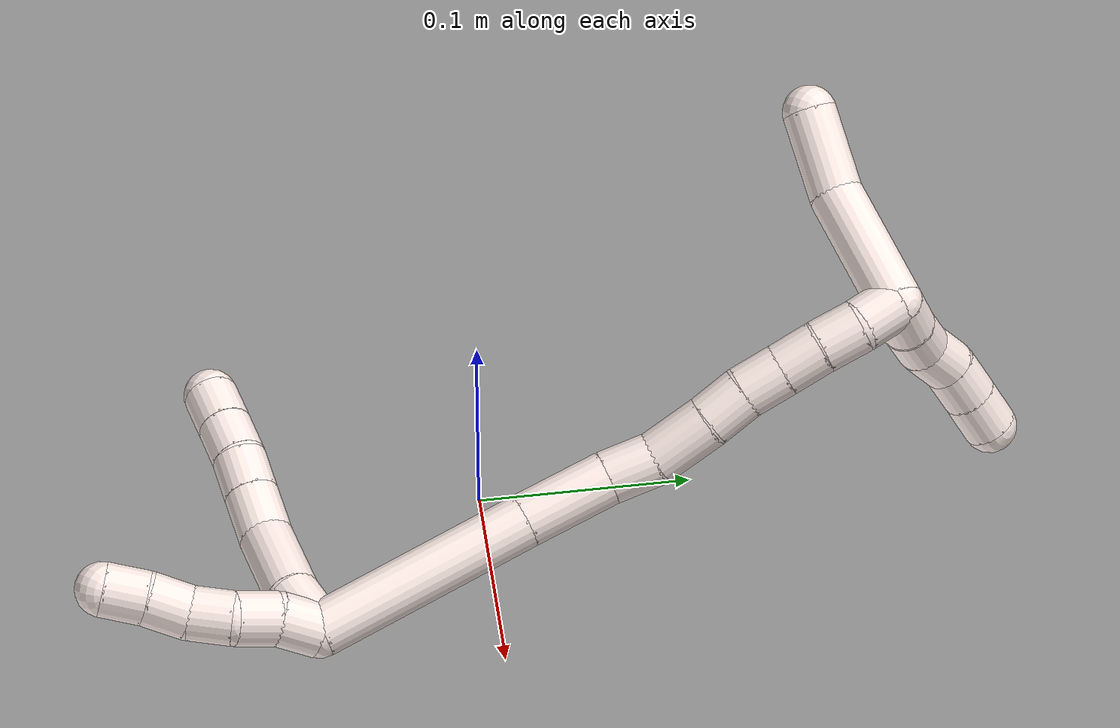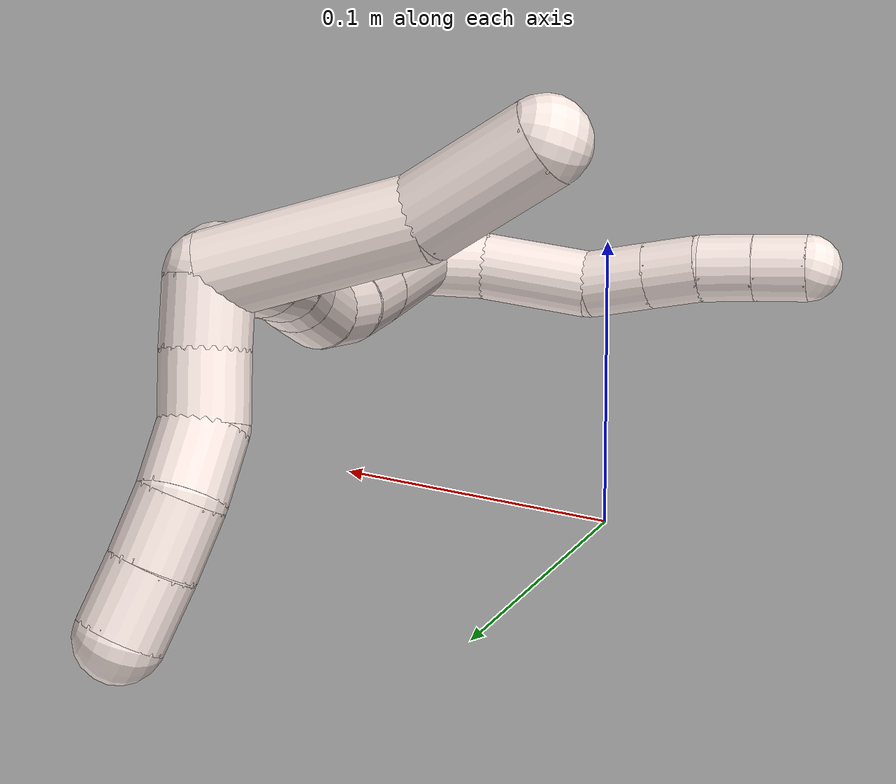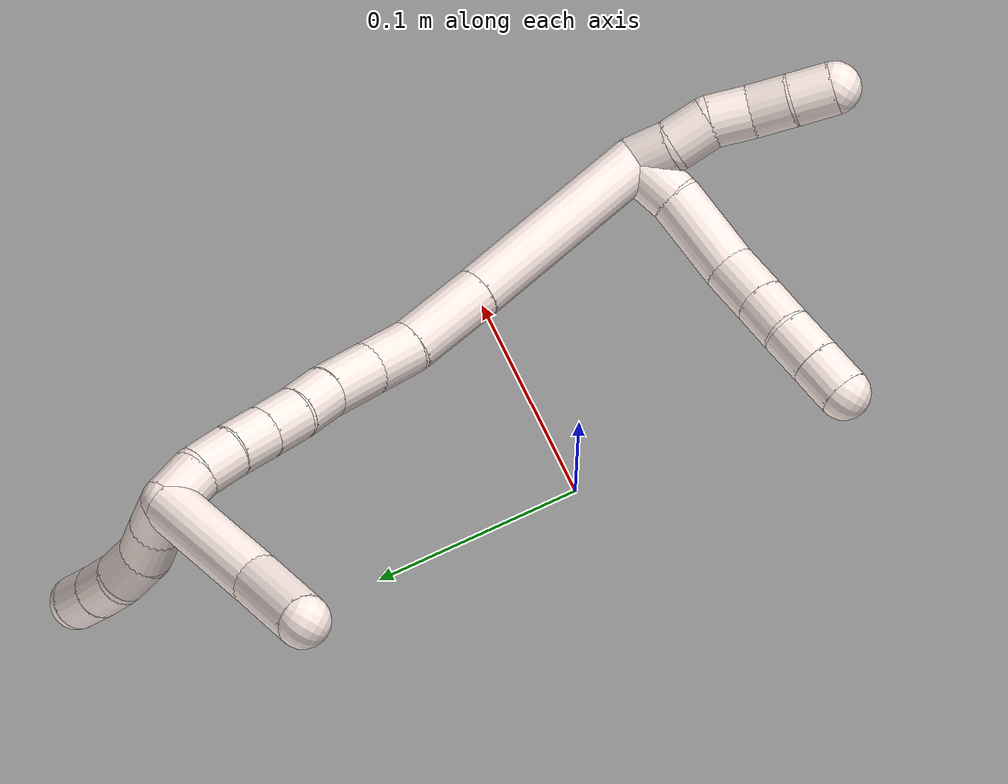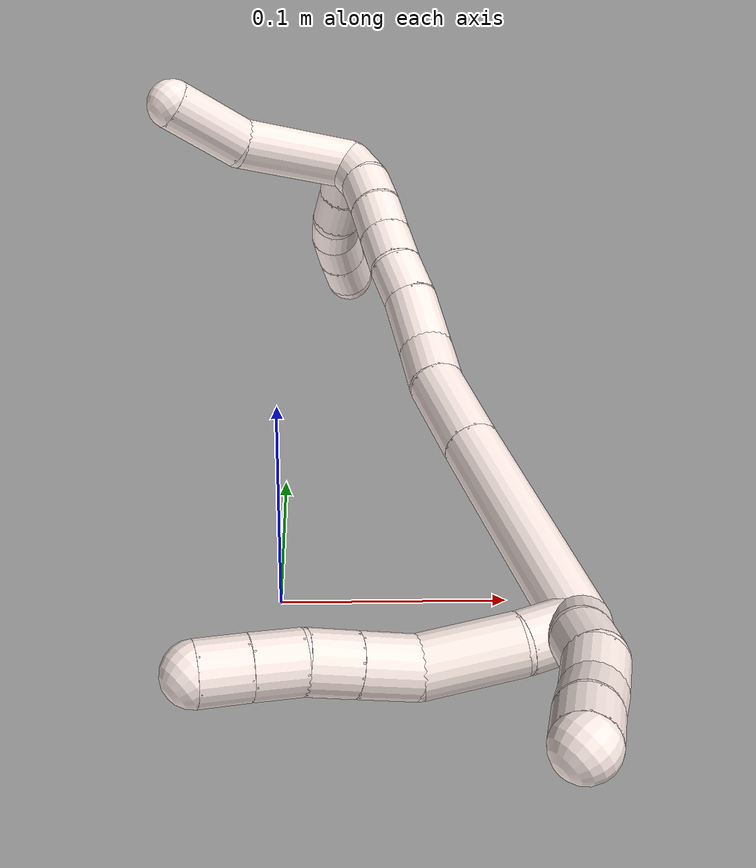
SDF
<sdf version="1.7">
 <world name="default">
  <model name="11">
   <static>0</static>
   <link name="11">
    <collision name="collision-cylinder-e_1_2_8">
     <pose>-0.005514 -0.000365 -0.011491 3.10986 -0.447193 -3.00228</pose>
     <geometry><cylinder><radius>0.0125</radius><length>0.025502</length></cylinder></geometry>
     <surface>
      <friction><ode><mu>1.16</mu><mu2>1.16</mu2><slip1>0</slip1><slip2>0</slip2></ode></friction>
      <contact><ode><kp>1e+06</kp><kd>1</kd><max_vel>0</max_vel><min_depth>0.001</min_depth></ode></contact>
     </surface>
    </collision>
    <visual name="visual-cylinder-e_1_2_8">
     <pose>-0.005514 -0.000365 -0.011491 3.10986 -0.447193 -3.00228</pose>
     <geometry><cylinder><radius>0.0125</radius><length>0.025502</length></cylinder></geometry>
     <material><ambient>1 0.933333 0.909804 1</ambient></material>
    </visual>
    <collision name="collision-cylinder-e_2_8_9">
     <pose>-0.020931 0.002196 -0.040444 -2.97563 -0.509977 2.52384</pose>
     <geometry><cylinder><radius>0.0125</radius><length>0.040573</length></cylinder></geometry>
     <surface>
      <friction><ode><mu>1.16</mu><mu2>1.16</mu2><slip1>0</slip1><slip2>0</slip2></ode></friction>
      <contact><ode><kp>1e+06</kp><kd>1</kd><max_vel>0</max_vel><min_depth>0.001</min_depth></ode></contact>
     </surface>
    </collision>
    <visual name="visual-cylinder-e_2_8_9">
     <pose>-0.020931 0.002196 -0.040444 -2.97563 -0.509977 2.52384</pose>
     <geometry><cylinder><radius>0.0125</radius><length>0.040573</length></cylinder></geometry>
     <material><ambient>1 0.933333 0.909804 1</ambient></material>
    </visual>
    <collision name="collision-cylinder-e_3_9_10">
     <pose>-0.039146 0.00436 -0.066385 3.05207 -0.773481 -2.92252</pose>
     <geometry><cylinder><radius>0.0125</radius><length>0.023795</length></cylinder></geometry>
     <surface>
      <friction><ode><mu>1.16</mu><mu2>1.16</mu2><slip1>0</slip1><slip2>0</slip2></ode></friction>
      <contact><ode><kp>1e+06</kp><kd>1</kd><max_vel>0</max_vel><min_depth>0.001</min_depth></ode></contact>
     </surface>
    </collision>
    <visual name="visual-cylinder-e_3_9_10">
     <pose>-0.039146 0.00436 -0.066385 3.05207 -0.773481 -2.92252</pose>
     <geometry><cylinder><radius>0.0125</radius><length>0.023795</length></cylinder></geometry>
     <material><ambient>1 0.933333 0.909804 1</ambient></material>
    </visual>
    <collision name="collision-cylinder-e_4_10_11">
     <pose>-0.054489 0.003064 -0.081975 3.06658 -0.778328 -2.95909</pose>
     <geometry><cylinder><radius>0.0125</radius><length>0.02003</length></cylinder></geometry>
     <surface>
      <friction><ode><mu>1.16</mu><mu2>1.16</mu2><slip1>0</slip1><slip2>0</slip2></ode></friction>
      <contact><ode><kp>1e+06</kp><kd>1</kd><max_vel>0</max_vel><min_depth>0.001</min_depth></ode></contact>
     </surface>
    </collision>
    <visual name="visual-cylinder-e_4_10_11">
     <pose>-0.054489 0.003064 -0.081975 3.06658 -0.778328 -2.95909</pose>
     <geometry><cylinder><radius>0.0125</radius><length>0.02003</length></cylinder></geometry>
     <material><ambient>1 0.933333 0.909804 1</ambient></material>
    </visual>
    <collision name="collision-cylinder-e_5_11_12">
     <pose>-0.067471 0.002549 -0.097178 -3.13916 -0.634081 3.13419</pose>
     <geometry><cylinder><radius>0.0125</radius><length>0.020088</length></cylinder></geometry>
     <surface>
      <friction><ode><mu>1.16</mu><mu2>1.16</mu2><slip1>0</slip1><slip2>0</slip2></ode></friction>
      <contact><ode><kp>1e+06</kp><kd>1</kd><max_vel>0</max_vel><min_depth>0.001</min_depth></ode></contact>
     </surface>
    </collision>
    <visual name="visual-cylinder-e_5_11_12">
     <pose>-0.067471 0.002549 -0.097178 -3.13916 -0.634081 3.13419</pose>
     <geometry><cylinder><radius>0.0125</radius><length>0.020088</length></cylinder></geometry>
     <material><ambient>1 0.933333 0.909804 1</ambient></material>
    </visual>
    <collision name="collision-cylinder-e_6_12_6">
     <pose>-0.079223 0.002688 -0.113421 -3.12696 -0.618454 3.09579</pose>
     <geometry><cylinder><radius>0.0125</radius><length>0.020012</length></cylinder></geometry>
     <surface>
      <friction><ode><mu>1.16</mu><mu2>1.16</mu2><slip1>0</slip1><slip2>0</slip2></ode></friction>
      <contact><ode><kp>1e+06</kp><kd>1</kd><max_vel>0</max_vel><min_depth>0.001</min_depth></ode></contact>
     </surface>
    </collision>
    <visual name="visual-cylinder-e_6_12_6">
     <pose>-0.079223 0.002688 -0.113421 -3.12696 -0.618454 3.09579</pose>
     <geometry><cylinder><radius>0.0125</radius><length>0.020012</length></cylinder></geometry>
     <material><ambient>1 0.933333 0.909804 1</ambient></material>
    </visual>
    <collision name="collision-cylinder-e_1_2_13">
     <pose>-8e-06 -0.008864 -0.00463 2.05214 -0.000779 -0.001286</pose>
     <geometry><cylinder><radius>0.0125</radius><length>0.02</length></cylinder></geometry>
     <surface>
      <friction><ode><mu>1.16</mu><mu2>1.16</mu2><slip1>0</slip1><slip2>0</slip2></ode></friction>
      <contact><ode><kp>1e+06</kp><kd>1</kd><max_vel>0</max_vel><min_depth>0.001</min_depth></ode></contact>
     </surface>
    </collision>
    <visual name="visual-cylinder-e_1_2_13">
     <pose>-8e-06 -0.008864 -0.00463 2.05214 -0.000779 -0.001286</pose>
     <geometry><cylinder><radius>0.0125</radius><length>0.02</length></cylinder></geometry>
     <material><ambient>1 0.933333 0.909804 1</ambient></material>
    </visual>
    <collision name="collision-cylinder-e_2_13_14">
     <pose>0.002586 -0.026494 -0.013306 2.00321 0.263149 0.40792</pose>
     <geometry><cylinder><radius>0.0125</radius><length>0.02</length></cylinder></geometry>
     <surface>
      <friction><ode><mu>1.16</mu><mu2>1.16</mu2><slip1>0</slip1><slip2>0</slip2></ode></friction>
      <contact><ode><kp>1e+06</kp><kd>1</kd><max_vel>0</max_vel><min_depth>0.001</min_depth></ode></contact>
     </surface>
    </collision>
    <visual name="visual-cylinder-e_2_13_14">
     <pose>0.002586 -0.026494 -0.013306 2.00321 0.263149 0.40792</pose>
     <geometry><cylinder><radius>0.0125</radius><length>0.02</length></cylinder></geometry>
     <material><ambient>1 0.933333 0.909804 1</ambient></material>
    </visual>
    <collision name="collision-cylinder-e_3_14_15">
     <pose>0.006862 -0.042384 -0.024169 2.33424 0.168306 0.389949</pose>
     <geometry><cylinder><radius>0.0125</radius><length>0.02</length></cylinder></geometry>
     <surface>
      <friction><ode><mu>1.16</mu><mu2>1.16</mu2><slip1>0</slip1><slip2>0</slip2></ode></friction>
      <contact><ode><kp>1e+06</kp><kd>1</kd><max_vel>0</max_vel><min_depth>0.001</min_depth></ode></contact>
     </surface>
    </collision>
    <visual name="visual-cylinder-e_3_14_15">
     <pose>0.006862 -0.042384 -0.024169 2.33424 0.168306 0.389949</pose>
     <geometry><cylinder><radius>0.0125</radius><length>0.02</length></cylinder></geometry>
     <material><ambient>1 0.933333 0.909804 1</ambient></material>
    </visual>
    <collision name="collision-cylinder-e_4_15_16">
     <pose>0.008098 -0.057641 -0.036785 2.19025 -0.043882 -0.08515</pose>
     <geometry><cylinder><radius>0.0125</radius><length>0.02</length></cylinder></geometry>
     <surface>
      <friction><ode><mu>1.16</mu><mu2>1.16</mu2><slip1>0</slip1><slip2>0</slip2></ode></friction>
      <contact><ode><kp>1e+06</kp><kd>1</kd><max_vel>0</max_vel><min_depth>0.001</min_depth></ode></contact>
     </surface>
    </collision>
    <visual name="visual-cylinder-e_4_15_16">
     <pose>0.008098 -0.057641 -0.036785 2.19025 -0.043882 -0.08515</pose>
     <geometry><cylinder><radius>0.0125</radius><length>0.02</length></cylinder></geometry>
     <material><ambient>1 0.933333 0.909804 1</ambient></material>
    </visual>
    <collision name="collision-cylinder-e_5_16_5">
     <pose>0.00851 -0.073556 -0.048808 2.24533 0.085153 0.17677</pose>
     <geometry><cylinder><radius>0.0125</radius><length>0.02</length></cylinder></geometry>
     <surface>
      <friction><ode><mu>1.16</mu><mu2>1.16</mu2><slip1>0</slip1><slip2>0</slip2></ode></friction>
      <contact><ode><kp>1e+06</kp><kd>1</kd><max_vel>0</max_vel><min_depth>0.001</min_depth></ode></contact>
     </surface>
    </collision>
    <visual name="visual-cylinder-e_5_16_5">
     <pose>0.00851 -0.073556 -0.048808 2.24533 0.085153 0.17677</pose>
     <geometry><cylinder><radius>0.0125</radius><length>0.02</length></cylinder></geometry>
     <material><ambient>1 0.933333 0.909804 1</ambient></material>
    </visual>
    <collision name="collision-cylinder-e_1_2_17">
     <pose>-0.036297 0.031792 0.019875 -1.01208 -0.769191 0.441297</pose>
     <geometry><cylinder><radius>0.0125</radius><length>0.104368</length></cylinder></geometry>
     <surface>
      <friction><ode><mu>1.16</mu><mu2>1.16</mu2><slip1>0</slip1><slip2>0</slip2></ode></friction>
      <contact><ode><kp>1e+06</kp><kd>1</kd><max_vel>0</max_vel><min_depth>0.001</min_depth></ode></contact>
     </surface>
    </collision>
    <visual name="visual-cylinder-e_1_2_17">
     <pose>-0.036297 0.031792 0.019875 -1.01208 -0.769191 0.441297</pose>
     <geometry><cylinder><radius>0.0125</radius><length>0.104368</length></cylinder></geometry>
     <material><ambient>1 0.933333 0.909804 1</ambient></material>
    </visual>
    <collision name="collision-cylinder-e_2_17_18">
     <pose>-0.087172 0.076501 0.048178 -0.992728 -0.757191 0.424387</pose>
     <geometry><cylinder><radius>0.0125</radius><length>0.042447</length></cylinder></geometry>
     <surface>
      <friction><ode><mu>1.16</mu><mu2>1.16</mu2><slip1>0</slip1><slip2>0</slip2></ode></friction>
      <contact><ode><kp>1e+06</kp><kd>1</kd><max_vel>0</max_vel><min_depth>0.001</min_depth></ode></contact>
     </surface>
    </collision>
    <visual name="visual-cylinder-e_2_17_18">
     <pose>-0.087172 0.076501 0.048178 -0.992728 -0.757191 0.424387</pose>
     <geometry><cylinder><radius>0.0125</radius><length>0.042447</length></cylinder></geometry>
     <material><ambient>1 0.933333 0.909804 1</ambient></material>
    </visual>
    <collision name="collision-cylinder-e_3_18_19">
     <pose>-0.109063 0.096015 0.062914 -0.807636 -0.675552 0.297944</pose>
     <geometry><cylinder><radius>0.0125</radius><length>0.023389</length></cylinder></geometry>
     <surface>
      <friction><ode><mu>1.16</mu><mu2>1.16</mu2><slip1>0</slip1><slip2>0</slip2></ode></friction>
      <contact><ode><kp>1e+06</kp><kd>1</kd><max_vel>0</max_vel><min_depth>0.001</min_depth></ode></contact>
     </surface>
    </collision>
    <visual name="visual-cylinder-e_3_18_19">
     <pose>-0.109063 0.096015 0.062914 -0.807636 -0.675552 0.297944</pose>
     <geometry><cylinder><radius>0.0125</radius><length>0.023389</length></cylinder></geometry>
     <material><ambient>1 0.933333 0.909804 1</ambient></material>
    </visual>
    <collision name="collision-cylinder-e_4_19_20">
     <pose>-0.127809 0.107698 0.076805 -0.591048 -0.89687 0.290878</pose>
     <geometry><cylinder><radius>0.0125</radius><length>0.029266</length></cylinder></geometry>
     <surface>
      <friction><ode><mu>1.16</mu><mu2>1.16</mu2><slip1>0</slip1><slip2>0</slip2></ode></friction>
      <contact><ode><kp>1e+06</kp><kd>1</kd><max_vel>0</max_vel><min_depth>0.001</min_depth></ode></contact>
     </surface>
    </collision>
    <visual name="visual-cylinder-e_4_19_20">
     <pose>-0.127809 0.107698 0.076805 -0.591048 -0.89687 0.290878</pose>
     <geometry><cylinder><radius>0.0125</radius><length>0.029266</length></cylinder></geometry>
     <material><ambient>1 0.933333 0.909804 1</ambient></material>
    </visual>
    <collision name="collision-cylinder-e_5_20_21">
     <pose>-0.147678 0.116564 0.088844 -0.703155 -0.965047 0.379667</pose>
     <geometry><cylinder><radius>0.0125</radius><length>0.020522</length></cylinder></geometry>
     <surface>
      <friction><ode><mu>1.16</mu><mu2>1.16</mu2><slip1>0</slip1><slip2>0</slip2></ode></friction>
      <contact><ode><kp>1e+06</kp><kd>1</kd><max_vel>0</max_vel><min_depth>0.001</min_depth></ode></contact>
     </surface>
    </collision>
    <visual name="visual-cylinder-e_5_20_21">
     <pose>-0.147678 0.116564 0.088844 -0.703155 -0.965047 0.379667</pose>
     <geometry><cylinder><radius>0.0125</radius><length>0.020522</length></cylinder></geometry>
     <material><ambient>1 0.933333 0.909804 1</ambient></material>
    </visual>
    <collision name="collision-cylinder-e_6_21_22">
     <pose>-0.163454 0.124872 0.09836 -0.730237 -0.824242 0.331152</pose>
     <geometry><cylinder><radius>0.0125</radius><length>0.020001</length></cylinder></geometry>
     <surface>
      <friction><ode><mu>1.16</mu><mu2>1.16</mu2><slip1>0</slip1><slip2>0</slip2></ode></friction>
      <contact><ode><kp>1e+06</kp><kd>1</kd><max_vel>0</max_vel><min_depth>0.001</min_depth></ode></contact>
     </surface>
    </collision>
    <visual name="visual-cylinder-e_6_21_22">
     <pose>-0.163454 0.124872 0.09836 -0.730237 -0.824242 0.331152</pose>
     <geometry><cylinder><radius>0.0125</radius><length>0.020001</length></cylinder></geometry>
     <material><ambient>1 0.933333 0.909804 1</ambient></material>
    </visual>
    <collision name="collision-cylinder-e_7_22_23">
     <pose>-0.178197 0.133751 0.108555 -0.702582 -0.833012 0.321466</pose>
     <geometry><cylinder><radius>0.0125</radius><length>0.020007</length></cylinder></geometry>
     <surface>
      <friction><ode><mu>1.16</mu><mu2>1.16</mu2><slip1>0</slip1><slip2>0</slip2></ode></friction>
      <contact><ode><kp>1e+06</kp><kd>1</kd><max_vel>0</max_vel><min_depth>0.001</min_depth></ode></contact>
     </surface>
    </collision>
    <visual name="visual-cylinder-e_7_22_23">
     <pose>-0.178197 0.133751 0.108555 -0.702582 -0.833012 0.321466</pose>
     <geometry><cylinder><radius>0.0125</radius><length>0.020007</length></cylinder></geometry>
     <material><ambient>1 0.933333 0.909804 1</ambient></material>
    </visual>
    <collision name="collision-cylinder-e_8_23_24">
     <pose>-0.192677 0.14329 0.118483 -0.825328 -0.786299 0.359235</pose>
     <geometry><cylinder><radius>0.0125</radius><length>0.02</length></cylinder></geometry>
     <surface>
      <friction><ode><mu>1.16</mu><mu2>1.16</mu2><slip1>0</slip1><slip2>0</slip2></ode></friction>
      <contact><ode><kp>1e+06</kp><kd>1</kd><max_vel>0</max_vel><min_depth>0.001</min_depth></ode></contact>
     </surface>
    </collision>
    <visual name="visual-cylinder-e_8_23_24">
     <pose>-0.192677 0.14329 0.118483 -0.825328 -0.786299 0.359235</pose>
     <geometry><cylinder><radius>0.0125</radius><length>0.02</length></cylinder></geometry>
     <material><ambient>1 0.933333 0.909804 1</ambient></material>
    </visual>
    <collision name="collision-cylinder-e_9_24_1">
     <pose>-0.207095 0.154672 0.126066 -1.14719 -0.824208 0.550488</pose>
     <geometry><cylinder><radius>0.0125</radius><length>0.02</length></cylinder></geometry>
     <surface>
      <friction><ode><mu>1.16</mu><mu2>1.16</mu2><slip1>0</slip1><slip2>0</slip2></ode></friction>
      <contact><ode><kp>1e+06</kp><kd>1</kd><max_vel>0</max_vel><min_depth>0.001</min_depth></ode></contact>
     </surface>
    </collision>
    <visual name="visual-cylinder-e_9_24_1">
     <pose>-0.207095 0.154672 0.126066 -1.14719 -0.824208 0.550488</pose>
     <geometry><cylinder><radius>0.0125</radius><length>0.02</length></cylinder></geometry>
     <material><ambient>1 0.933333 0.909804 1</ambient></material>
    </visual>
    <collision name="collision-cylinder-e_1_1_25">
     <pose>-0.210412 0.169707 0.126491 -1.83228 0.413994 -0.534119</pose>
     <geometry><cylinder><radius>0.0125</radius><length>0.02</length></cylinder></geometry>
     <surface>
      <friction><ode><mu>1.16</mu><mu2>1.16</mu2><slip1>0</slip1><slip2>0</slip2></ode></friction>
      <contact><ode><kp>1e+06</kp><kd>1</kd><max_vel>0</max_vel><min_depth>0.001</min_depth></ode></contact>
     </surface>
    </collision>
    <visual name="visual-cylinder-e_1_1_25">
     <pose>-0.210412 0.169707 0.126491 -1.83228 0.413994 -0.534119</pose>
     <geometry><cylinder><radius>0.0125</radius><length>0.02</length></cylinder></geometry>
     <material><ambient>1 0.933333 0.909804 1</ambient></material>
    </visual>
    <collision name="collision-cylinder-e_2_25_26">
     <pose>-0.203287 0.187718 0.121605 -1.83906 0.315479 -0.411466</pose>
     <geometry><cylinder><radius>0.0125</radius><length>0.02</length></cylinder></geometry>
     <surface>
      <friction><ode><mu>1.16</mu><mu2>1.16</mu2><slip1>0</slip1><slip2>0</slip2></ode></friction>
      <contact><ode><kp>1e+06</kp><kd>1</kd><max_vel>0</max_vel><min_depth>0.001</min_depth></ode></contact>
     </surface>
    </collision>
    <visual name="visual-cylinder-e_2_25_26">
     <pose>-0.203287 0.187718 0.121605 -1.83906 0.315479 -0.411466</pose>
     <geometry><cylinder><radius>0.0125</radius><length>0.02</length></cylinder></geometry>
     <material><ambient>1 0.933333 0.909804 1</ambient></material>
    </visual>
    <collision name="collision-cylinder-e_3_26_27">
     <pose>-0.197826 0.206586 0.119639 -1.51373 0.238054 -0.224957</pose>
     <geometry><cylinder><radius>0.0125</radius><length>0.02</length></cylinder></geometry>
     <surface>
      <friction><ode><mu>1.16</mu><mu2>1.16</mu2><slip1>0</slip1><slip2>0</slip2></ode></friction>
      <contact><ode><kp>1e+06</kp><kd>1</kd><max_vel>0</max_vel><min_depth>0.001</min_depth></ode></contact>
     </surface>
    </collision>
    <visual name="visual-cylinder-e_3_26_27">
     <pose>-0.197826 0.206586 0.119639 -1.51373 0.238054 -0.224957</pose>
     <geometry><cylinder><radius>0.0125</radius><length>0.02</length></cylinder></geometry>
     <material><ambient>1 0.933333 0.909804 1</ambient></material>
    </visual>
    <collision name="collision-cylinder-e_4_27_28">
     <pose>-0.190502 0.224924 0.121065 -1.47023 0.51965 -0.471772</pose>
     <geometry><cylinder><radius>0.0125</radius><length>0.02</length></cylinder></geometry>
     <surface>
      <friction><ode><mu>1.16</mu><mu2>1.16</mu2><slip1>0</slip1><slip2>0</slip2></ode></friction>
      <contact><ode><kp>1e+06</kp><kd>1</kd><max_vel>0</max_vel><min_depth>0.001</min_depth></ode></contact>
     </surface>
    </collision>
    <visual name="visual-cylinder-e_4_27_28">
     <pose>-0.190502 0.224924 0.121065 -1.47023 0.51965 -0.471772</pose>
     <geometry><cylinder><radius>0.0125</radius><length>0.02</length></cylinder></geometry>
     <material><ambient>1 0.933333 0.909804 1</ambient></material>
    </visual>
    <collision name="collision-cylinder-e_5_28_4">
     <pose>-0.180311 0.242001 0.123141 -1.42905 0.549782 -0.479857</pose>
     <geometry><cylinder><radius>0.0125</radius><length>0.02</length></cylinder></geometry>
     <surface>
      <friction><ode><mu>1.16</mu><mu2>1.16</mu2><slip1>0</slip1><slip2>0</slip2></ode></friction>
      <contact><ode><kp>1e+06</kp><kd>1</kd><max_vel>0</max_vel><min_depth>0.001</min_depth></ode></contact>
     </surface>
    </collision>
    <visual name="visual-cylinder-e_5_28_4">
     <pose>-0.180311 0.242001 0.123141 -1.42905 0.549782 -0.479857</pose>
     <geometry><cylinder><radius>0.0125</radius><length>0.02</length></cylinder></geometry>
     <material><ambient>1 0.933333 0.909804 1</ambient></material>
    </visual>
    <collision name="collision-cylinder-e_1_1_29">
     <pose>-0.234459 0.15467 0.10741 2.86049 -0.731151 -2.43351</pose>
     <geometry><cylinder><radius>0.0125</radius><length>0.059979</length></cylinder></geometry>
     <surface>
      <friction><ode><mu>1.16</mu><mu2>1.16</mu2><slip1>0</slip1><slip2>0</slip2></ode></friction>
      <contact><ode><kp>1e+06</kp><kd>1</kd><max_vel>0</max_vel><min_depth>0.001</min_depth></ode></contact>
     </surface>
    </collision>
    <visual name="visual-cylinder-e_1_1_29">
     <pose>-0.234459 0.15467 0.10741 2.86049 -0.731151 -2.43351</pose>
     <geometry><cylinder><radius>0.0125</radius><length>0.059979</length></cylinder></geometry>
     <material><ambient>1 0.933333 0.909804 1</ambient></material>
    </visual>
    <collision name="collision-cylinder-e_2_29_3">
     <pose>-0.270934 0.142124 0.076503 2.55014 -0.964968 -2.08793</pose>
     <geometry><cylinder><radius>0.0125</radius><length>0.040021</length></cylinder></geometry>
     <surface>
      <friction><ode><mu>1.16</mu><mu2>1.16</mu2><slip1>0</slip1><slip2>0</slip2></ode></friction>
      <contact><ode><kp>1e+06</kp><kd>1</kd><max_vel>0</max_vel><min_depth>0.001</min_depth></ode></contact>
     </surface>
    </collision>
    <visual name="visual-cylinder-e_2_29_3">
     <pose>-0.270934 0.142124 0.076503 2.55014 -0.964968 -2.08793</pose>
     <geometry><cylinder><radius>0.0125</radius><length>0.040021</length></cylinder></geometry>
     <material><ambient>1 0.933333 0.909804 1</ambient></material>
    </visual>
    <collision name="collision-sphere-3">
     <pose>-0.287383 0.13577 0.067043 0 -0 0</pose>
     <geometry><sphere><radius>0.0125</radius></sphere></geometry>
     <surface>
      <friction><ode><mu>1.16</mu><mu2>1.16</mu2><slip1>0</slip1><slip2>0</slip2></ode></friction>
      <contact><ode><kp>1e+06</kp><kd>1</kd><max_vel>0</max_vel><min_depth>0.001</min_depth></ode></contact>
     </surface>
    </collision>
    <visual name="visual-sphere-3">
     <pose>-0.287383 0.13577 0.067043 0 -0 0</pose>
     <geometry><sphere><radius>0.0125</radius></sphere></geometry>
     <material><ambient>1 0.933333 0.909804 1</ambient></material>
    </visual>
    <collision name="collision-sphere-29">
     <pose>-0.254484 0.148477 0.085962 0 -0 0</pose>
     <geometry><sphere><radius>0.0125</radius></sphere></geometry>
     <surface>
      <friction><ode><mu>1.16</mu><mu2>1.16</mu2><slip1>0</slip1><slip2>0</slip2></ode></friction>
      <contact><ode><kp>1e+06</kp><kd>1</kd><max_vel>0</max_vel><min_depth>0.001</min_depth></ode></contact>
     </surface>
    </collision>
    <visual name="visual-sphere-29">
     <pose>-0.254484 0.148477 0.085962 0 -0 0</pose>
     <geometry><sphere><radius>0.0125</radius></sphere></geometry>
     <material><ambient>1 0.933333 0.909804 1</ambient></material>
    </visual>
    <collision name="collision-sphere-4">
     <pose>-0.175086 0.250442 0.124345 0 -0 0</pose>
     <geometry><sphere><radius>0.0125</radius></sphere></geometry>
     <surface>
      <friction><ode><mu>1.16</mu><mu2>1.16</mu2><slip1>0</slip1><slip2>0</slip2></ode></friction>
      <contact><ode><kp>1e+06</kp><kd>1</kd><max_vel>0</max_vel><min_depth>0.001</min_depth></ode></contact>
     </surface>
    </collision>
    <visual name="visual-sphere-4">
     <pose>-0.175086 0.250442 0.124345 0 -0 0</pose>
     <geometry><sphere><radius>0.0125</radius></sphere></geometry>
     <material><ambient>1 0.933333 0.909804 1</ambient></material>
    </visual>
    <collision name="collision-sphere-28">
     <pose>-0.185536 0.233561 0.121936 0 -0 0</pose>
     <geometry><sphere><radius>0.0125</radius></sphere></geometry>
     <surface>
      <friction><ode><mu>1.16</mu><mu2>1.16</mu2><slip1>0</slip1><slip2>0</slip2></ode></friction>
      <contact><ode><kp>1e+06</kp><kd>1</kd><max_vel>0</max_vel><min_depth>0.001</min_depth></ode></contact>
     </surface>
    </collision>
    <visual name="visual-sphere-28">
     <pose>-0.185536 0.233561 0.121936 0 -0 0</pose>
     <geometry><sphere><radius>0.0125</radius></sphere></geometry>
     <material><ambient>1 0.933333 0.909804 1</ambient></material>
    </visual>
    <collision name="collision-sphere-27">
     <pose>-0.195468 0.216288 0.120193 0 -0 0</pose>
     <geometry><sphere><radius>0.0125</radius></sphere></geometry>
     <surface>
      <friction><ode><mu>1.16</mu><mu2>1.16</mu2><slip1>0</slip1><slip2>0</slip2></ode></friction>
      <contact><ode><kp>1e+06</kp><kd>1</kd><max_vel>0</max_vel><min_depth>0.001</min_depth></ode></contact>
     </surface>
    </collision>
    <visual name="visual-sphere-27">
     <pose>-0.195468 0.216288 0.120193 0 -0 0</pose>
     <geometry><sphere><radius>0.0125</radius></sphere></geometry>
     <material><ambient>1 0.933333 0.909804 1</ambient></material>
    </visual>
    <collision name="collision-sphere-26">
     <pose>-0.200184 0.196884 0.119085 0 -0 0</pose>
     <geometry><sphere><radius>0.0125</radius></sphere></geometry>
     <surface>
      <friction><ode><mu>1.16</mu><mu2>1.16</mu2><slip1>0</slip1><slip2>0</slip2></ode></friction>
      <contact><ode><kp>1e+06</kp><kd>1</kd><max_vel>0</max_vel><min_depth>0.001</min_depth></ode></contact>
     </surface>
    </collision>
    <visual name="visual-sphere-26">
     <pose>-0.200184 0.196884 0.119085 0 -0 0</pose>
     <geometry><sphere><radius>0.0125</radius></sphere></geometry>
     <material><ambient>1 0.933333 0.909804 1</ambient></material>
    </visual>
    <collision name="collision-sphere-25">
     <pose>-0.206389 0.178551 0.124124 0 -0 0</pose>
     <geometry><sphere><radius>0.0125</radius></sphere></geometry>
     <surface>
      <friction><ode><mu>1.16</mu><mu2>1.16</mu2><slip1>0</slip1><slip2>0</slip2></ode></friction>
      <contact><ode><kp>1e+06</kp><kd>1</kd><max_vel>0</max_vel><min_depth>0.001</min_depth></ode></contact>
     </surface>
    </collision>
    <visual name="visual-sphere-25">
     <pose>-0.206389 0.178551 0.124124 0 -0 0</pose>
     <geometry><sphere><radius>0.0125</radius></sphere></geometry>
     <material><ambient>1 0.933333 0.909804 1</ambient></material>
    </visual>
    <collision name="collision-sphere-1">
     <pose>-0.214435 0.160863 0.128858 0 -0 0</pose>
     <geometry><sphere><radius>0.0125</radius></sphere></geometry>
     <surface>
      <friction><ode><mu>1.16</mu><mu2>1.16</mu2><slip1>0</slip1><slip2>0</slip2></ode></friction>
      <contact><ode><kp>1e+06</kp><kd>1</kd><max_vel>0</max_vel><min_depth>0.001</min_depth></ode></contact>
     </surface>
    </collision>
    <visual name="visual-sphere-1">
     <pose>-0.214435 0.160863 0.128858 0 -0 0</pose>
     <geometry><sphere><radius>0.0125</radius></sphere></geometry>
     <material><ambient>1 0.933333 0.909804 1</ambient></material>
    </visual>
    <collision name="collision-sphere-24">
     <pose>-0.199754 0.148481 0.123275 0 -0 0</pose>
     <geometry><sphere><radius>0.0125</radius></sphere></geometry>
     <surface>
      <friction><ode><mu>1.16</mu><mu2>1.16</mu2><slip1>0</slip1><slip2>0</slip2></ode></friction>
      <contact><ode><kp>1e+06</kp><kd>1</kd><max_vel>0</max_vel><min_depth>0.001</min_depth></ode></contact>
     </surface>
    </collision>
    <visual name="visual-sphere-24">
     <pose>-0.199754 0.148481 0.123275 0 -0 0</pose>
     <geometry><sphere><radius>0.0125</radius></sphere></geometry>
     <material><ambient>1 0.933333 0.909804 1</ambient></material>
    </visual>
    <collision name="collision-sphere-23">
     <pose>-0.1856 0.138099 0.113691 0 -0 0</pose>
     <geometry><sphere><radius>0.0125</radius></sphere></geometry>
     <surface>
      <friction><ode><mu>1.16</mu><mu2>1.16</mu2><slip1>0</slip1><slip2>0</slip2></ode></friction>
      <contact><ode><kp>1e+06</kp><kd>1</kd><max_vel>0</max_vel><min_depth>0.001</min_depth></ode></contact>
     </surface>
    </collision>
    <visual name="visual-sphere-23">
     <pose>-0.1856 0.138099 0.113691 0 -0 0</pose>
     <geometry><sphere><radius>0.0125</radius></sphere></geometry>
     <material><ambient>1 0.933333 0.909804 1</ambient></material>
    </visual>
    <collision name="collision-sphere-22">
     <pose>-0.170795 0.129403 0.10342 0 -0 0</pose>
     <geometry><sphere><radius>0.0125</radius></sphere></geometry>
     <surface>
      <friction><ode><mu>1.16</mu><mu2>1.16</mu2><slip1>0</slip1><slip2>0</slip2></ode></friction>
      <contact><ode><kp>1e+06</kp><kd>1</kd><max_vel>0</max_vel><min_depth>0.001</min_depth></ode></contact>
     </surface>
    </collision>
    <visual name="visual-sphere-22">
     <pose>-0.170795 0.129403 0.10342 0 -0 0</pose>
     <geometry><sphere><radius>0.0125</radius></sphere></geometry>
     <material><ambient>1 0.933333 0.909804 1</ambient></material>
    </visual>
    <collision name="collision-sphere-21">
     <pose>-0.156114 0.120342 0.0933 0 -0 0</pose>
     <geometry><sphere><radius>0.0125</radius></sphere></geometry>
     <surface>
      <friction><ode><mu>1.16</mu><mu2>1.16</mu2><slip1>0</slip1><slip2>0</slip2></ode></friction>
      <contact><ode><kp>1e+06</kp><kd>1</kd><max_vel>0</max_vel><min_depth>0.001</min_depth></ode></contact>
     </surface>
    </collision>
    <visual name="visual-sphere-21">
     <pose>-0.156114 0.120342 0.0933 0 -0 0</pose>
     <geometry><sphere><radius>0.0125</radius></sphere></geometry>
     <material><ambient>1 0.933333 0.909804 1</ambient></material>
    </visual>
    <collision name="collision-sphere-12">
     <pose>-0.073422 0.002569 -0.10527 0 -0 0</pose>
     <geometry><sphere><radius>0.0125</radius></sphere></geometry>
     <surface>
      <friction><ode><mu>1.16</mu><mu2>1.16</mu2><slip1>0</slip1><slip2>0</slip2></ode></friction>
      <contact><ode><kp>1e+06</kp><kd>1</kd><max_vel>0</max_vel><min_depth>0.001</min_depth></ode></contact>
     </surface>
    </collision>
    <visual name="visual-sphere-12">
     <pose>-0.073422 0.002569 -0.10527 0 -0 0</pose>
     <geometry><sphere><radius>0.0125</radius></sphere></geometry>
     <material><ambient>1 0.933333 0.909804 1</ambient></material>
    </visual>
    <collision name="collision-sphere-11">
     <pose>-0.061521 0.00253 -0.089086 0 -0 0</pose>
     <geometry><sphere><radius>0.0125</radius></sphere></geometry>
     <surface>
      <friction><ode><mu>1.16</mu><mu2>1.16</mu2><slip1>0</slip1><slip2>0</slip2></ode></friction>
      <contact><ode><kp>1e+06</kp><kd>1</kd><max_vel>0</max_vel><min_depth>0.001</min_depth></ode></contact>
     </surface>
    </collision>
    <visual name="visual-sphere-11">
     <pose>-0.061521 0.00253 -0.089086 0 -0 0</pose>
     <geometry><sphere><radius>0.0125</radius></sphere></geometry>
     <material><ambient>1 0.933333 0.909804 1</ambient></material>
    </visual>
    <collision name="collision-sphere-10">
     <pose>-0.047458 0.003599 -0.074863 0 -0 0</pose>
     <geometry><sphere><radius>0.0125</radius></sphere></geometry>
     <surface>
      <friction><ode><mu>1.16</mu><mu2>1.16</mu2><slip1>0</slip1><slip2>0</slip2></ode></friction>
      <contact><ode><kp>1e+06</kp><kd>1</kd><max_vel>0</max_vel><min_depth>0.001</min_depth></ode></contact>
     </surface>
    </collision>
    <visual name="visual-sphere-10">
     <pose>-0.047458 0.003599 -0.074863 0 -0 0</pose>
     <geometry><sphere><radius>0.0125</radius></sphere></geometry>
     <material><ambient>1 0.933333 0.909804 1</ambient></material>
    </visual>
    <collision name="collision-sphere-9">
     <pose>-0.030834 0.005121 -0.057906 0 -0 0</pose>
     <geometry><sphere><radius>0.0125</radius></sphere></geometry>
     <surface>
      <friction><ode><mu>1.16</mu><mu2>1.16</mu2><slip1>0</slip1><slip2>0</slip2></ode></friction>
      <contact><ode><kp>1e+06</kp><kd>1</kd><max_vel>0</max_vel><min_depth>0.001</min_depth></ode></contact>
     </surface>
    </collision>
    <visual name="visual-sphere-9">
     <pose>-0.030834 0.005121 -0.057906 0 -0 0</pose>
     <geometry><sphere><radius>0.0125</radius></sphere></geometry>
     <material><ambient>1 0.933333 0.909804 1</ambient></material>
    </visual>
    <collision name="collision-sphere-2">
     <geometry><sphere><radius>0.0125</radius></sphere></geometry>
     <surface>
      <friction><ode><mu>1.16</mu><mu2>1.16</mu2><slip1>0</slip1><slip2>0</slip2></ode></friction>
      <contact><ode><kp>1e+06</kp><kd>1</kd><max_vel>0</max_vel><min_depth>0.001</min_depth></ode></contact>
     </surface>
    </collision>
    <visual name="visual-sphere-2">
     <geometry><sphere><radius>0.0125</radius></sphere></geometry>
     <material><ambient>1 0.933333 0.909804 1</ambient></material>
    </visual>
    <collision name="collision-sphere-19">
     <pose>-0.116375 0.102609 0.069222 0 -0 0</pose>
     <geometry><sphere><radius>0.0125</radius></sphere></geometry>
     <surface>
      <friction><ode><mu>1.16</mu><mu2>1.16</mu2><slip1>0</slip1><slip2>0</slip2></ode></friction>
      <contact><ode><kp>1e+06</kp><kd>1</kd><max_vel>0</max_vel><min_depth>0.001</min_depth></ode></contact>
     </surface>
    </collision>
    <visual name="visual-sphere-19">
     <pose>-0.116375 0.102609 0.069222 0 -0 0</pose>
     <geometry><sphere><radius>0.0125</radius></sphere></geometry>
     <material><ambient>1 0.933333 0.909804 1</ambient></material>
    </visual>
    <collision name="collision-sphere-8">
     <pose>-0.011028 -0.000729 -0.022982 0 -0 0</pose>
     <geometry><sphere><radius>0.0125</radius></sphere></geometry>
     <surface>
      <friction><ode><mu>1.16</mu><mu2>1.16</mu2><slip1>0</slip1><slip2>0</slip2></ode></friction>
      <contact><ode><kp>1e+06</kp><kd>1</kd><max_vel>0</max_vel><min_depth>0.001</min_depth></ode></contact>
     </surface>
    </collision>
    <visual name="visual-sphere-8">
     <pose>-0.011028 -0.000729 -0.022982 0 -0 0</pose>
     <geometry><sphere><radius>0.0125</radius></sphere></geometry>
     <material><ambient>1 0.933333 0.909804 1</ambient></material>
    </visual>
    <collision name="collision-sphere-6">
     <pose>-0.085024 0.002808 -0.121573 0 -0 0</pose>
     <geometry><sphere><radius>0.0125</radius></sphere></geometry>
     <surface>
      <friction><ode><mu>1.16</mu><mu2>1.16</mu2><slip1>0</slip1><slip2>0</slip2></ode></friction>
      <contact><ode><kp>1e+06</kp><kd>1</kd><max_vel>0</max_vel><min_depth>0.001</min_depth></ode></contact>
     </surface>
    </collision>
    <visual name="visual-sphere-6">
     <pose>-0.085024 0.002808 -0.121573 0 -0 0</pose>
     <geometry><sphere><radius>0.0125</radius></sphere></geometry>
     <material><ambient>1 0.933333 0.909804 1</ambient></material>
    </visual>
    <collision name="collision-sphere-13">
     <pose>-1.6e-05 -0.017727 -0.009259 0 -0 0</pose>
     <geometry><sphere><radius>0.0125</radius></sphere></geometry>
     <surface>
      <friction><ode><mu>1.16</mu><mu2>1.16</mu2><slip1>0</slip1><slip2>0</slip2></ode></friction>
      <contact><ode><kp>1e+06</kp><kd>1</kd><max_vel>0</max_vel><min_depth>0.001</min_depth></ode></contact>
     </surface>
    </collision>
    <visual name="visual-sphere-13">
     <pose>-1.6e-05 -0.017727 -0.009259 0 -0 0</pose>
     <geometry><sphere><radius>0.0125</radius></sphere></geometry>
     <material><ambient>1 0.933333 0.909804 1</ambient></material>
    </visual>
    <collision name="collision-sphere-14">
     <pose>0.005187 -0.035261 -0.017352 0 -0 0</pose>
     <geometry><sphere><radius>0.0125</radius></sphere></geometry>
     <surface>
      <friction><ode><mu>1.16</mu><mu2>1.16</mu2><slip1>0</slip1><slip2>0</slip2></ode></friction>
      <contact><ode><kp>1e+06</kp><kd>1</kd><max_vel>0</max_vel><min_depth>0.001</min_depth></ode></contact>
     </surface>
    </collision>
    <visual name="visual-sphere-14">
     <pose>0.005187 -0.035261 -0.017352 0 -0 0</pose>
     <geometry><sphere><radius>0.0125</radius></sphere></geometry>
     <material><ambient>1 0.933333 0.909804 1</ambient></material>
    </visual>
    <collision name="collision-sphere-15">
     <pose>0.008537 -0.049507 -0.030985 0 -0 0</pose>
     <geometry><sphere><radius>0.0125</radius></sphere></geometry>
     <surface>
      <friction><ode><mu>1.16</mu><mu2>1.16</mu2><slip1>0</slip1><slip2>0</slip2></ode></friction>
      <contact><ode><kp>1e+06</kp><kd>1</kd><max_vel>0</max_vel><min_depth>0.001</min_depth></ode></contact>
     </surface>
    </collision>
    <visual name="visual-sphere-15">
     <pose>0.008537 -0.049507 -0.030985 0 -0 0</pose>
     <geometry><sphere><radius>0.0125</radius></sphere></geometry>
     <material><ambient>1 0.933333 0.909804 1</ambient></material>
    </visual>
    <collision name="collision-sphere-16">
     <pose>0.00766 -0.065775 -0.042586 0 -0 0</pose>
     <geometry><sphere><radius>0.0125</radius></sphere></geometry>
     <surface>
      <friction><ode><mu>1.16</mu><mu2>1.16</mu2><slip1>0</slip1><slip2>0</slip2></ode></friction>
      <contact><ode><kp>1e+06</kp><kd>1</kd><max_vel>0</max_vel><min_depth>0.001</min_depth></ode></contact>
     </surface>
    </collision>
    <visual name="visual-sphere-16">
     <pose>0.00766 -0.065775 -0.042586 0 -0 0</pose>
     <geometry><sphere><radius>0.0125</radius></sphere></geometry>
     <material><ambient>1 0.933333 0.909804 1</ambient></material>
    </visual>
    <collision name="collision-sphere-5">
     <pose>0.009361 -0.081338 -0.055031 0 -0 0</pose>
     <geometry><sphere><radius>0.0125</radius></sphere></geometry>
     <surface>
      <friction><ode><mu>1.16</mu><mu2>1.16</mu2><slip1>0</slip1><slip2>0</slip2></ode></friction>
      <contact><ode><kp>1e+06</kp><kd>1</kd><max_vel>0</max_vel><min_depth>0.001</min_depth></ode></contact>
     </surface>
    </collision>
    <visual name="visual-sphere-5">
     <pose>0.009361 -0.081338 -0.055031 0 -0 0</pose>
     <geometry><sphere><radius>0.0125</radius></sphere></geometry>
     <material><ambient>1 0.933333 0.909804 1</ambient></material>
    </visual>
    <collision name="collision-sphere-17">
     <pose>-0.072594 0.063583 0.03975 0 -0 0</pose>
     <geometry><sphere><radius>0.0125</radius></sphere></geometry>
     <surface>
      <friction><ode><mu>1.16</mu><mu2>1.16</mu2><slip1>0</slip1><slip2>0</slip2></ode></friction>
      <contact><ode><kp>1e+06</kp><kd>1</kd><max_vel>0</max_vel><min_depth>0.001</min_depth></ode></contact>
     </surface>
    </collision>
    <visual name="visual-sphere-17">
     <pose>-0.072594 0.063583 0.03975 0 -0 0</pose>
     <geometry><sphere><radius>0.0125</radius></sphere></geometry>
     <material><ambient>1 0.933333 0.909804 1</ambient></material>
    </visual>
    <collision name="collision-sphere-18">
     <pose>-0.10175 0.08942 0.056606 0 -0 0</pose>
     <geometry><sphere><radius>0.0125</radius></sphere></geometry>
     <surface>
      <friction><ode><mu>1.16</mu><mu2>1.16</mu2><slip1>0</slip1><slip2>0</slip2></ode></friction>
      <contact><ode><kp>1e+06</kp><kd>1</kd><max_vel>0</max_vel><min_depth>0.001</min_depth></ode></contact>
     </surface>
    </collision>
    <visual name="visual-sphere-18">
     <pose>-0.10175 0.08942 0.056606 0 -0 0</pose>
     <geometry><sphere><radius>0.0125</radius></sphere></geometry>
     <material><ambient>1 0.933333 0.909804 1</ambient></material>
    </visual>
    <collision name="collision-sphere-20">
     <pose>-0.139243 0.112787 0.084387 0 -0 0</pose>
     <geometry><sphere><radius>0.0125</radius></sphere></geometry>
     <surface>
      <friction><ode><mu>1.16</mu><mu2>1.16</mu2><slip1>0</slip1><slip2>0</slip2></ode></friction>
      <contact><ode><kp>1e+06</kp><kd>1</kd><max_vel>0</max_vel><min_depth>0.001</min_depth></ode></contact>
     </surface>
    </collision>
    <visual name="visual-sphere-20">
     <pose>-0.139243 0.112787 0.084387 0 -0 0</pose>
     <geometry><sphere><radius>0.0125</radius></sphere></geometry>
     <material><ambient>1 0.933333 0.909804 1</ambient></material>
    </visual>
    <inertial>
     <pose>-0.108834 0.076323 0.038005 0 -0 0</pose>
     <mass>0.75</mass>
     <inertia><ixx>6.3e-05</ixx><ixy>0</ixy><ixz>0</ixz><iyy>0.000159</iyy><iyz>0</iyz><izz>3.3e-05</izz></inertia>
    </inertial>
   </link>
   <pose>0.116675 -0.085358 0.051403 -1.03269 0.723324 -0.524034</pose>
  </model>
 </world>
</sdf>
